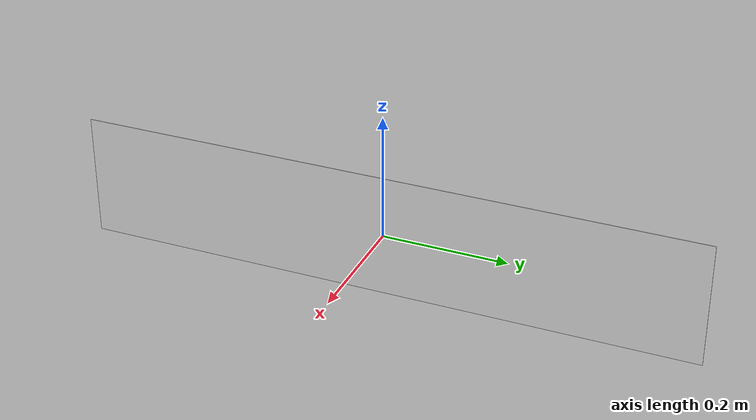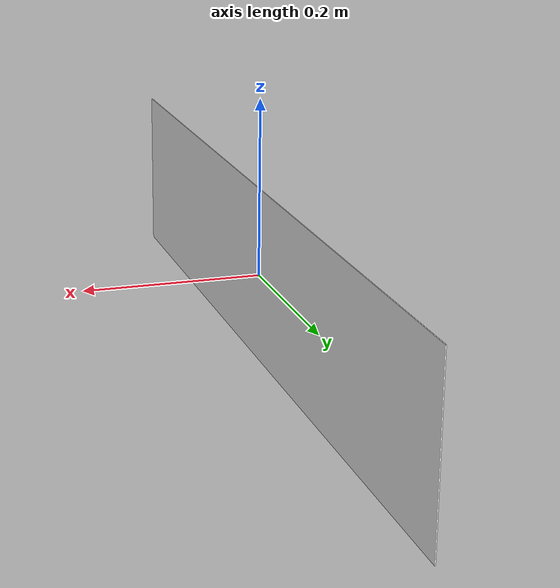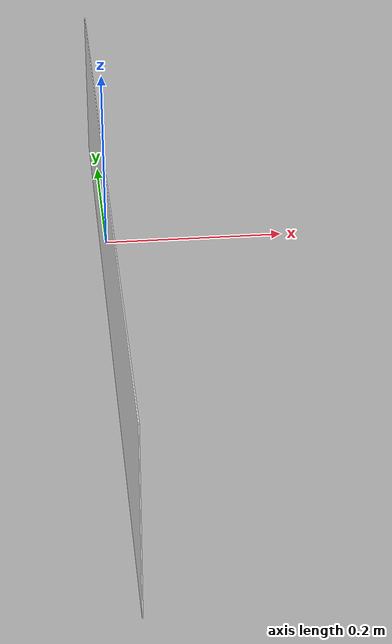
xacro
<?xml version="1.0" encoding="utf-8"?>
<robot name="quadrupedrobot_3dros" xmlns:xacro="http://www.ros.org/wiki/xacro">
<!--all model*******************************************************************************************-->
  <link name="hurdles">
    	<inertial>
      		<origin xyz="0 0 0" rpy="0 0 0" />
      		<mass value="100" />
		<inertia ixx="1" ixy="1" ixz="1" iyy="1" iyz="1" izz="1" />
    	</inertial>
    	<visual>
      		<origin xyz="0 0 0" rpy="0 0 0" />
      		<geometry>
        		<box size="0.001 1 0.2" />
		</geometry>
      		<material name="">
        		<color rgba="1 1 1 1" />
      		</material>
    	</visual>
    	<collision>
      		<origin xyz="0 0 0" rpy="0 0 0" />
      		<geometry>
        		<box size="0.001 1 0.2" />
      		</geometry>
    	</collision>
    </link>

<!--gazebo*******************************************************************************************-->

</robot>
